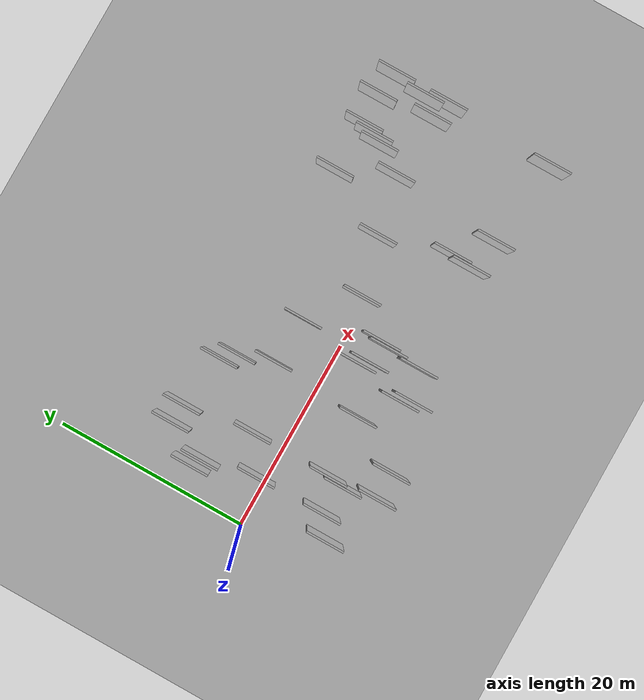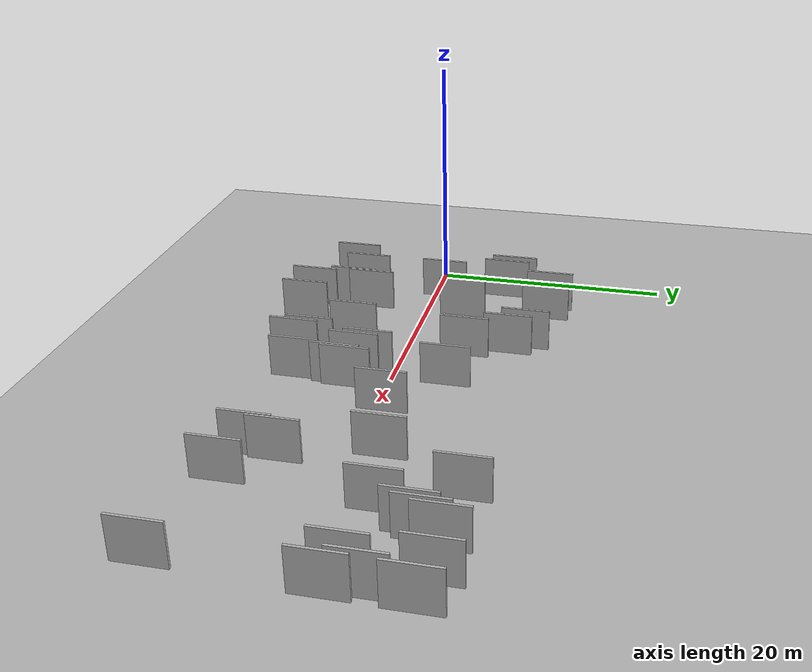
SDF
<?xml version="1.0" encoding="utf-8"?>

<sdf version="1.6">

   <world name="default">

      <gui fullscreen="0">

         <camera name="user_camera">

            <pose>-15 0 4.57585 0 0 0</pose>

            <view_controller>orbit</view_controller>

         </camera>

      </gui>

      <scene>

         <sky>

           <clouds>

             <speed>12</speed>

           </clouds>

         </sky>

         <ambient>0.4 0.4 0.4 1</ambient>

         <background>0.7 0.7 0.7 1</background>

         <shadows>1</shadows>

      </scene>

      <gravity>0 0 -9.8066</gravity>

      <magnetic_field>6e-06 2.3e-05 -4.2e-05</magnetic_field>

      <physics default="0" name="default_physics" type="ode">

         <ode>

            <solver>

               <type>quick</type>

               <iters>10</iters>

               <sor>1.0</sor>

               <use_dynamic_moi_rescaling>0</use_dynamic_moi_rescaling>

            </solver>

            <constraints>

               <cfm>0</cfm>

               <erp>0.2</erp>

               <contact_max_correcting_vel>100</contact_max_correcting_vel>

               <contact_surface_layer>0.001</contact_surface_layer>

            </constraints>

         </ode>

         <max_step_size>0.004</max_step_size>

         <real_time_factor>1</real_time_factor>

         <real_time_update_rate>250</real_time_update_rate>

      </physics>

      <light name="sun" type="directional">

         <cast_shadows>1</cast_shadows>

         <pose>0 0 10 0 0 0</pose>

         <diffuse>0.8 0.8 0.8 1</diffuse>

         <specular>0.2 0.2 0.2 1</specular>

         <attenuation>

            <range>1000</range>

            <constant>0.9</constant>

            <linear>0.01</linear>

            <quadratic>0.001</quadratic>

         </attenuation>

         <direction>-0.5 0.1 -0.9</direction>

      </light>

      <include>

         <name>ground_plane_1</name>

         <uri>model://HANNAS_ground_plane</uri>

         <pose>0 0 0  0 0 0</pose>

      </include>

      <include>

         <name>ground_plane_2</name>

         <uri>model://HANNAS_ground_plane</uri>

         <pose>100 0 0  0 0 0</pose>

      </include>

      <model name="HANNAS_wall_1">

         <static>1</static>

         <pose frame="">45.4894 8.3542 0.0 0.000000 0.000000 1.570796</pose>

         <link name="link">

            <pose frame="">0 0 2.00 0 0 0</pose>

            <collision name="collision">

               <geometry>

                  <box>

                     <size>4.00 0.2 4.00</size>

                  </box>

               </geometry>

               <max_contacts>10</max_contacts>

               <surface>

                  <contact>

                     <ode/>

                  </contact>

                  <bounce/>

                  <friction>

                     <torsional>

                        <ode/>

                     </torsional>

                     <ode/>

                  </friction>

               </surface>

            </collision>

            <visual name="visual">

               <cast_shadows>0</cast_shadows>

               <geometry>

                  <box>

                     <size>4.00 0.2 4.00</size>

                  </box>

               </geometry>

               <material>

                  <script>

                     <uri>model://HANNAS_wall/materials/scripts</uri>

                     <uri>model://HANNAS_wall/materials/textures</uri>

                     <name>vrc/HANNAS_wall</name>

                  </script>

               </material>

            </visual>

            <self_collide>0</self_collide>

            <enable_wind>0</enable_wind>

            <kinematic>0</kinematic>

         </link>

      </model>

      <model name="HANNAS_wall_2">

         <static>1</static>

         <pose frame="">42.9070 8.9392 0.0 0.000000 0.000000 1.570796</pose>

         <link name="link">

            <pose frame="">0 0 2.00 0 0 0</pose>

            <collision name="collision">

               <geometry>

                  <box>

                     <size>4.00 0.2 4.00</size>

                  </box>

               </geometry>

               <max_contacts>10</max_contacts>

               <surface>

                  <contact>

                     <ode/>

                  </contact>

                  <bounce/>

                  <friction>

                     <torsional>

                        <ode/>

                     </torsional>

                     <ode/>

                  </friction>

               </surface>

            </collision>

            <visual name="visual">

               <cast_shadows>0</cast_shadows>

               <geometry>

                  <box>

                     <size>4.00 0.2 4.00</size>

                  </box>

               </geometry>

               <material>

                  <script>

                     <uri>model://HANNAS_wall/materials/scripts</uri>

                     <uri>model://HANNAS_wall/materials/textures</uri>

                     <name>vrc/HANNAS_wall</name>

                  </script>

               </material>

            </visual>

            <self_collide>0</self_collide>

            <enable_wind>0</enable_wind>

            <kinematic>0</kinematic>

         </link>

      </model>

      <model name="HANNAS_wall_3">

         <static>1</static>

         <pose frame="">19.9680 -2.9516 0.0 0.000000 0.000000 1.570796</pose>

         <link name="link">

            <pose frame="">0 0 2.00 0 0 0</pose>

            <collision name="collision">

               <geometry>

                  <box>

                     <size>4.00 0.2 4.00</size>

                  </box>

               </geometry>

               <max_contacts>10</max_contacts>

               <surface>

                  <contact>

                     <ode/>

                  </contact>

                  <bounce/>

                  <friction>

                     <torsional>

                        <ode/>

                     </torsional>

                     <ode/>

                  </friction>

               </surface>

            </collision>

            <visual name="visual">

               <cast_shadows>0</cast_shadows>

               <geometry>

                  <box>

                     <size>4.00 0.2 4.00</size>

                  </box>

               </geometry>

               <material>

                  <script>

                     <uri>model://HANNAS_wall/materials/scripts</uri>

                     <uri>model://HANNAS_wall/materials/textures</uri>

                     <name>vrc/HANNAS_wall</name>

                  </script>

               </material>

            </visual>

            <self_collide>0</self_collide>

            <enable_wind>0</enable_wind>

            <kinematic>0</kinematic>

         </link>

      </model>

      <model name="HANNAS_wall_4">

         <static>1</static>

         <pose frame="">4.1068 6.5939 0.0 0.000000 0.000000 1.570796</pose>

         <link name="link">

            <pose frame="">0 0 2.00 0 0 0</pose>

            <collision name="collision">

               <geometry>

                  <box>

                     <size>4.00 0.2 4.00</size>

                  </box>

               </geometry>

               <max_contacts>10</max_contacts>

               <surface>

                  <contact>

                     <ode/>

                  </contact>

                  <bounce/>

                  <friction>

                     <torsional>

                        <ode/>

                     </torsional>

                     <ode/>

                  </friction>

               </surface>

            </collision>

            <visual name="visual">

               <cast_shadows>0</cast_shadows>

               <geometry>

                  <box>

                     <size>4.00 0.2 4.00</size>

                  </box>

               </geometry>

               <material>

                  <script>

                     <uri>model://HANNAS_wall/materials/scripts</uri>

                     <uri>model://HANNAS_wall/materials/textures</uri>

                     <name>vrc/HANNAS_wall</name>

                  </script>

               </material>

            </visual>

            <self_collide>0</self_collide>

            <enable_wind>0</enable_wind>

            <kinematic>0</kinematic>

         </link>

      </model>

      <model name="HANNAS_wall_5">

         <static>1</static>

         <pose frame="">18.1444 -7.2465 0.0 0.000000 0.000000 1.570796</pose>

         <link name="link">

            <pose frame="">0 0 2.00 0 0 0</pose>

            <collision name="collision">

               <geometry>

                  <box>

                     <size>4.00 0.2 4.00</size>

                  </box>

               </geometry>

               <max_contacts>10</max_contacts>

               <surface>

                  <contact>

                     <ode/>

                  </contact>

                  <bounce/>

                  <friction>

                     <torsional>

                        <ode/>

                     </torsional>

                     <ode/>

                  </friction>

               </surface>

            </collision>

            <visual name="visual">

               <cast_shadows>0</cast_shadows>

               <geometry>

                  <box>

                     <size>4.00 0.2 4.00</size>

                  </box>

               </geometry>

               <material>

                  <script>

                     <uri>model://HANNAS_wall/materials/scripts</uri>

                     <uri>model://HANNAS_wall/materials/textures</uri>

                     <name>vrc/HANNAS_wall</name>

                  </script>

               </material>

            </visual>

            <self_collide>0</self_collide>

            <enable_wind>0</enable_wind>

            <kinematic>0</kinematic>

         </link>

      </model>

      <model name="HANNAS_wall_6">

         <static>1</static>

         <pose frame="">32.6432 -6.9110 0.0 0.000000 0.000000 1.570796</pose>

         <link name="link">

            <pose frame="">0 0 2.00 0 0 0</pose>

            <collision name="collision">

               <geometry>

                  <box>

                     <size>4.00 0.2 4.00</size>

                  </box>

               </geometry>

               <max_contacts>10</max_contacts>

               <surface>

                  <contact>

                     <ode/>

                  </contact>

                  <bounce/>

                  <friction>

                     <torsional>

                        <ode/>

                     </torsional>

                     <ode/>

                  </friction>

               </surface>

            </collision>

            <visual name="visual">

               <cast_shadows>0</cast_shadows>

               <geometry>

                  <box>

                     <size>4.00 0.2 4.00</size>

                  </box>

               </geometry>

               <material>

                  <script>

                     <uri>model://HANNAS_wall/materials/scripts</uri>

                     <uri>model://HANNAS_wall/materials/textures</uri>

                     <name>vrc/HANNAS_wall</name>

                  </script>

               </material>

            </visual>

            <self_collide>0</self_collide>

            <enable_wind>0</enable_wind>

            <kinematic>0</kinematic>

         </link>

      </model>

      <model name="HANNAS_wall_7">

         <static>1</static>

         <pose frame="">7.7941 10.6193 0.0 0.000000 0.000000 1.570796</pose>

         <link name="link">

            <pose frame="">0 0 2.00 0 0 0</pose>

            <collision name="collision">

               <geometry>

                  <box>

                     <size>4.00 0.2 4.00</size>

                  </box>

               </geometry>

               <max_contacts>10</max_contacts>

               <surface>

                  <contact>

                     <ode/>

                  </contact>

                  <bounce/>

                  <friction>

                     <torsional>

                        <ode/>

                     </torsional>

                     <ode/>

                  </friction>

               </surface>

            </collision>

            <visual name="visual">

               <cast_shadows>0</cast_shadows>

               <geometry>

                  <box>

                     <size>4.00 0.2 4.00</size>

                  </box>

               </geometry>

               <material>

                  <script>

                     <uri>model://HANNAS_wall/materials/scripts</uri>

                     <uri>model://HANNAS_wall/materials/textures</uri>

                     <name>vrc/HANNAS_wall</name>

                  </script>

               </material>

            </visual>

            <self_collide>0</self_collide>

            <enable_wind>0</enable_wind>

            <kinematic>0</kinematic>

         </link>

      </model>

      <model name="HANNAS_wall_8">

         <static>1</static>

         <pose frame="">39.7721 8.7067 0.0 0.000000 0.000000 1.570796</pose>

         <link name="link">

            <pose frame="">0 0 2.00 0 0 0</pose>

            <collision name="collision">

               <geometry>

                  <box>

                     <size>4.00 0.2 4.00</size>

                  </box>

               </geometry>

               <max_contacts>10</max_contacts>

               <surface>

                  <contact>

                     <ode/>

                  </contact>

                  <bounce/>

                  <friction>

                     <torsional>

                        <ode/>

                     </torsional>

                     <ode/>

                  </friction>

               </surface>

            </collision>

            <visual name="visual">

               <cast_shadows>0</cast_shadows>

               <geometry>

                  <box>

                     <size>4.00 0.2 4.00</size>

                  </box>

               </geometry>

               <material>

                  <script>

                     <uri>model://HANNAS_wall/materials/scripts</uri>

                     <uri>model://HANNAS_wall/materials/textures</uri>

                     <name>vrc/HANNAS_wall</name>

                  </script>

               </material>

            </visual>

            <self_collide>0</self_collide>

            <enable_wind>0</enable_wind>

            <kinematic>0</kinematic>

         </link>

      </model>

      <model name="HANNAS_wall_9">

         <static>1</static>

         <pose frame="">8.4126 -6.4922 0.0 0.000000 0.000000 1.570796</pose>

         <link name="link">

            <pose frame="">0 0 2.00 0 0 0</pose>

            <collision name="collision">

               <geometry>

                  <box>

                     <size>4.00 0.2 4.00</size>

                  </box>

               </geometry>

               <max_contacts>10</max_contacts>

               <surface>

                  <contact>

                     <ode/>

                  </contact>

                  <bounce/>

                  <friction>

                     <torsional>

                        <ode/>

                     </torsional>

                     <ode/>

                  </friction>

               </surface>

            </collision>

            <visual name="visual">

               <cast_shadows>0</cast_shadows>

               <geometry>

                  <box>

                     <size>4.00 0.2 4.00</size>

                  </box>

               </geometry>

               <material>

                  <script>

                     <uri>model://HANNAS_wall/materials/scripts</uri>

                     <uri>model://HANNAS_wall/materials/textures</uri>

                     <name>vrc/HANNAS_wall</name>

                  </script>

               </material>

            </visual>

            <self_collide>0</self_collide>

            <enable_wind>0</enable_wind>

            <kinematic>0</kinematic>

         </link>

      </model>

      <model name="HANNAS_wall_10">

         <static>1</static>

         <pose frame="">39.3088 7.3638 0.0 0.000000 0.000000 1.570796</pose>

         <link name="link">

            <pose frame="">0 0 2.00 0 0 0</pose>

            <collision name="collision">

               <geometry>

                  <box>

                     <size>4.00 0.2 4.00</size>

                  </box>

               </geometry>

               <max_contacts>10</max_contacts>

               <surface>

                  <contact>

                     <ode/>

                  </contact>

                  <bounce/>

                  <friction>

                     <torsional>

                        <ode/>

                     </torsional>

                     <ode/>

                  </friction>

               </surface>

            </collision>

            <visual name="visual">

               <cast_shadows>0</cast_shadows>

               <geometry>

                  <box>

                     <size>4.00 0.2 4.00</size>

                  </box>

               </geometry>

               <material>

                  <script>

                     <uri>model://HANNAS_wall/materials/scripts</uri>

                     <uri>model://HANNAS_wall/materials/textures</uri>

                     <name>vrc/HANNAS_wall</name>

                  </script>

               </material>

            </visual>

            <self_collide>0</self_collide>

            <enable_wind>0</enable_wind>

            <kinematic>0</kinematic>

         </link>

      </model>

      <model name="HANNAS_wall_11">

         <static>1</static>

         <pose frame="">14.8884 -4.5303 0.0 0.000000 0.000000 1.570796</pose>

         <link name="link">

            <pose frame="">0 0 2.00 0 0 0</pose>

            <collision name="collision">

               <geometry>

                  <box>

                     <size>4.00 0.2 4.00</size>

                  </box>

               </geometry>

               <max_contacts>10</max_contacts>

               <surface>

                  <contact>

                     <ode/>

                  </contact>

                  <bounce/>

                  <friction>

                     <torsional>

                        <ode/>

                     </torsional>

                     <ode/>

                  </friction>

               </surface>

            </collision>

            <visual name="visual">

               <cast_shadows>0</cast_shadows>

               <geometry>

                  <box>

                     <size>4.00 0.2 4.00</size>

                  </box>

               </geometry>

               <material>

                  <script>

                     <uri>model://HANNAS_wall/materials/scripts</uri>

                     <uri>model://HANNAS_wall/materials/textures</uri>

                     <name>vrc/HANNAS_wall</name>

                  </script>

               </material>

            </visual>

            <self_collide>0</self_collide>

            <enable_wind>0</enable_wind>

            <kinematic>0</kinematic>

         </link>

      </model>

      <model name="HANNAS_wall_12">

         <static>1</static>

         <pose frame="">19.3660 -1.9566 0.0 0.000000 0.000000 1.570796</pose>

         <link name="link">

            <pose frame="">0 0 2.00 0 0 0</pose>

            <collision name="collision">

               <geometry>

                  <box>

                     <size>4.00 0.2 4.00</size>

                  </box>

               </geometry>

               <max_contacts>10</max_contacts>

               <surface>

                  <contact>

                     <ode/>

                  </contact>

                  <bounce/>

                  <friction>

                     <torsional>

                        <ode/>

                     </torsional>

                     <ode/>

                  </friction>

               </surface>

            </collision>

            <visual name="visual">

               <cast_shadows>0</cast_shadows>

               <geometry>

                  <box>

                     <size>4.00 0.2 4.00</size>

                  </box>

               </geometry>

               <material>

                  <script>

                     <uri>model://HANNAS_wall/materials/scripts</uri>

                     <uri>model://HANNAS_wall/materials/textures</uri>

                     <name>vrc/HANNAS_wall</name>

                  </script>

               </material>

            </visual>

            <self_collide>0</self_collide>

            <enable_wind>0</enable_wind>

            <kinematic>0</kinematic>

         </link>

      </model>

      <model name="HANNAS_wall_13">

         <static>1</static>

         <pose frame="">5.8351 10.7316 0.0 0.000000 0.000000 1.570796</pose>

         <link name="link">

            <pose frame="">0 0 2.00 0 0 0</pose>

            <collision name="collision">

               <geometry>

                  <box>

                     <size>4.00 0.2 4.00</size>

                  </box>

               </geometry>

               <max_contacts>10</max_contacts>

               <surface>

                  <contact>

                     <ode/>

                  </contact>

                  <bounce/>

                  <friction>

                     <torsional>

                        <ode/>

                     </torsional>

                     <ode/>

                  </friction>

               </surface>

            </collision>

            <visual name="visual">

               <cast_shadows>0</cast_shadows>

               <geometry>

                  <box>

                     <size>4.00 0.2 4.00</size>

                  </box>

               </geometry>

               <material>

                  <script>

                     <uri>model://HANNAS_wall/materials/scripts</uri>

                     <uri>model://HANNAS_wall/materials/textures</uri>

                     <name>vrc/HANNAS_wall</name>

                  </script>

               </material>

            </visual>

            <self_collide>0</self_collide>

            <enable_wind>0</enable_wind>

            <kinematic>0</kinematic>

         </link>

      </model>

      <model name="HANNAS_wall_14">

         <static>1</static>

         <pose frame="">36.9810 3.6514 0.0 0.000000 0.000000 1.570796</pose>

         <link name="link">

            <pose frame="">0 0 2.00 0 0 0</pose>

            <collision name="collision">

               <geometry>

                  <box>

                     <size>4.00 0.2 4.00</size>

                  </box>

               </geometry>

               <max_contacts>10</max_contacts>

               <surface>

                  <contact>

                     <ode/>

                  </contact>

                  <bounce/>

                  <friction>

                     <torsional>

                        <ode/>

                     </torsional>

                     <ode/>

                  </friction>

               </surface>

            </collision>

            <visual name="visual">

               <cast_shadows>0</cast_shadows>

               <geometry>

                  <box>

                     <size>4.00 0.2 4.00</size>

                  </box>

               </geometry>

               <material>

                  <script>

                     <uri>model://HANNAS_wall/materials/scripts</uri>

                     <uri>model://HANNAS_wall/materials/textures</uri>

                     <name>vrc/HANNAS_wall</name>

                  </script>

               </material>

            </visual>

            <self_collide>0</self_collide>

            <enable_wind>0</enable_wind>

            <kinematic>0</kinematic>

         </link>

      </model>

      <model name="HANNAS_wall_15">

         <static>1</static>

         <pose frame="">44.9371 -8.8621 0.0 0.000000 0.000000 1.570796</pose>

         <link name="link">

            <pose frame="">0 0 2.00 0 0 0</pose>

            <collision name="collision">

               <geometry>

                  <box>

                     <size>4.00 0.2 4.00</size>

                  </box>

               </geometry>

               <max_contacts>10</max_contacts>

               <surface>

                  <contact>

                     <ode/>

                  </contact>

                  <bounce/>

                  <friction>

                     <torsional>

                        <ode/>

                     </torsional>

                     <ode/>

                  </friction>

               </surface>

            </collision>

            <visual name="visual">

               <cast_shadows>0</cast_shadows>

               <geometry>

                  <box>

                     <size>4.00 0.2 4.00</size>

                  </box>

               </geometry>

               <material>

                  <script>

                     <uri>model://HANNAS_wall/materials/scripts</uri>

                     <uri>model://HANNAS_wall/materials/textures</uri>

                     <name>vrc/HANNAS_wall</name>

                  </script>

               </material>

            </visual>

            <self_collide>0</self_collide>

            <enable_wind>0</enable_wind>

            <kinematic>0</kinematic>

         </link>

      </model>

      <model name="HANNAS_wall_16">

         <static>1</static>

         <pose frame="">25.1809 0.7637 0.0 0.000000 0.000000 1.570796</pose>

         <link name="link">

            <pose frame="">0 0 2.00 0 0 0</pose>

            <collision name="collision">

               <geometry>

                  <box>

                     <size>4.00 0.2 4.00</size>

                  </box>

               </geometry>

               <max_contacts>10</max_contacts>

               <surface>

                  <contact>

                     <ode/>

                  </contact>

                  <bounce/>

                  <friction>

                     <torsional>

                        <ode/>

                     </torsional>

                     <ode/>

                  </friction>

               </surface>

            </collision>

            <visual name="visual">

               <cast_shadows>0</cast_shadows>

               <geometry>

                  <box>

                     <size>4.00 0.2 4.00</size>

                  </box>

               </geometry>

               <material>

                  <script>

                     <uri>model://HANNAS_wall/materials/scripts</uri>

                     <uri>model://HANNAS_wall/materials/textures</uri>

                     <name>vrc/HANNAS_wall</name>

                  </script>

               </material>

            </visual>

            <self_collide>0</self_collide>

            <enable_wind>0</enable_wind>

            <kinematic>0</kinematic>

         </link>

      </model>

      <model name="HANNAS_wall_17">

         <static>1</static>

         <pose frame="">8.6704 3.4592 0.0 0.000000 0.000000 1.570796</pose>

         <link name="link">

            <pose frame="">0 0 2.00 0 0 0</pose>

            <collision name="collision">

               <geometry>

                  <box>

                     <size>4.00 0.2 4.00</size>

                  </box>

               </geometry>

               <max_contacts>10</max_contacts>

               <surface>

                  <contact>

                     <ode/>

                  </contact>

                  <bounce/>

                  <friction>

                     <torsional>

                        <ode/>

                     </torsional>

                     <ode/>

                  </friction>

               </surface>

            </collision>

            <visual name="visual">

               <cast_shadows>0</cast_shadows>

               <geometry>

                  <box>

                     <size>4.00 0.2 4.00</size>

                  </box>

               </geometry>

               <material>

                  <script>

                     <uri>model://HANNAS_wall/materials/scripts</uri>

                     <uri>model://HANNAS_wall/materials/textures</uri>

                     <name>vrc/HANNAS_wall</name>

                  </script>

               </material>

            </visual>

            <self_collide>0</self_collide>

            <enable_wind>0</enable_wind>

            <kinematic>0</kinematic>

         </link>

      </model>

      <model name="HANNAS_wall_18">

         <static>1</static>

         <pose frame="">20.5142 4.6013 0.0 0.000000 0.000000 1.570796</pose>

         <link name="link">

            <pose frame="">0 0 2.00 0 0 0</pose>

            <collision name="collision">

               <geometry>

                  <box>

                     <size>4.00 0.2 4.00</size>

                  </box>

               </geometry>

               <max_contacts>10</max_contacts>

               <surface>

                  <contact>

                     <ode/>

                  </contact>

                  <bounce/>

                  <friction>

                     <torsional>

                        <ode/>

                     </torsional>

                     <ode/>

                  </friction>

               </surface>

            </collision>

            <visual name="visual">

               <cast_shadows>0</cast_shadows>

               <geometry>

                  <box>

                     <size>4.00 0.2 4.00</size>

                  </box>

               </geometry>

               <material>

                  <script>

                     <uri>model://HANNAS_wall/materials/scripts</uri>

                     <uri>model://HANNAS_wall/materials/textures</uri>

                     <name>vrc/HANNAS_wall</name>

                  </script>

               </material>

            </visual>

            <self_collide>0</self_collide>

            <enable_wind>0</enable_wind>

            <kinematic>0</kinematic>

         </link>

      </model>

      <model name="HANNAS_wall_19">

         <static>1</static>

         <pose frame="">32.8965 -4.7578 0.0 0.000000 0.000000 1.570796</pose>

         <link name="link">

            <pose frame="">0 0 2.00 0 0 0</pose>

            <collision name="collision">

               <geometry>

                  <box>

                     <size>4.00 0.2 4.00</size>

                  </box>

               </geometry>

               <max_contacts>10</max_contacts>

               <surface>

                  <contact>

                     <ode/>

                  </contact>

                  <bounce/>

                  <friction>

                     <torsional>

                        <ode/>

                     </torsional>

                     <ode/>

                  </friction>

               </surface>

            </collision>

            <visual name="visual">

               <cast_shadows>0</cast_shadows>

               <geometry>

                  <box>

                     <size>4.00 0.2 4.00</size>

                  </box>

               </geometry>

               <material>

                  <script>

                     <uri>model://HANNAS_wall/materials/scripts</uri>

                     <uri>model://HANNAS_wall/materials/textures</uri>

                     <name>vrc/HANNAS_wall</name>

                  </script>

               </material>

            </visual>

            <self_collide>0</self_collide>

            <enable_wind>0</enable_wind>

            <kinematic>0</kinematic>

         </link>

      </model>

      <model name="HANNAS_wall_20">

         <static>1</static>

         <pose frame="">38.7794 6.4910 0.0 0.000000 0.000000 1.570796</pose>

         <link name="link">

            <pose frame="">0 0 2.00 0 0 0</pose>

            <collision name="collision">

               <geometry>

                  <box>

                     <size>4.00 0.2 4.00</size>

                  </box>

               </geometry>

               <max_contacts>10</max_contacts>

               <surface>

                  <contact>

                     <ode/>

                  </contact>

                  <bounce/>

                  <friction>

                     <torsional>

                        <ode/>

                     </torsional>

                     <ode/>

                  </friction>

               </surface>

            </collision>

            <visual name="visual">

               <cast_shadows>0</cast_shadows>

               <geometry>

                  <box>

                     <size>4.00 0.2 4.00</size>

                  </box>

               </geometry>

               <material>

                  <script>

                     <uri>model://HANNAS_wall/materials/scripts</uri>

                     <uri>model://HANNAS_wall/materials/textures</uri>

                     <name>vrc/HANNAS_wall</name>

                  </script>

               </material>

            </visual>

            <self_collide>0</self_collide>

            <enable_wind>0</enable_wind>

            <kinematic>0</kinematic>

         </link>

      </model>

      <model name="HANNAS_wall_21">

         <static>1</static>

         <pose frame="">45.4353 2.6922 0.0 0.000000 0.000000 1.570796</pose>

         <link name="link">

            <pose frame="">0 0 2.00 0 0 0</pose>

            <collision name="collision">

               <geometry>

                  <box>

                     <size>4.00 0.2 4.00</size>

                  </box>

               </geometry>

               <max_contacts>10</max_contacts>

               <surface>

                  <contact>

                     <ode/>

                  </contact>

                  <bounce/>

                  <friction>

                     <torsional>

                        <ode/>

                     </torsional>

                     <ode/>

                  </friction>

               </surface>

            </collision>

            <visual name="visual">

               <cast_shadows>0</cast_shadows>

               <geometry>

                  <box>

                     <size>4.00 0.2 4.00</size>

                  </box>

               </geometry>

               <material>

                  <script>

                     <uri>model://HANNAS_wall/materials/scripts</uri>

                     <uri>model://HANNAS_wall/materials/textures</uri>

                     <name>vrc/HANNAS_wall</name>

                  </script>

               </material>

            </visual>

            <self_collide>0</self_collide>

            <enable_wind>0</enable_wind>

            <kinematic>0</kinematic>

         </link>

      </model>

      <model name="HANNAS_wall_22">

         <static>1</static>

         <pose frame="">18.7224 -8.3823 0.0 0.000000 0.000000 1.570796</pose>

         <link name="link">

            <pose frame="">0 0 2.00 0 0 0</pose>

            <collision name="collision">

               <geometry>

                  <box>

                     <size>4.00 0.2 4.00</size>

                  </box>

               </geometry>

               <max_contacts>10</max_contacts>

               <surface>

                  <contact>

                     <ode/>

                  </contact>

                  <bounce/>

                  <friction>

                     <torsional>

                        <ode/>

                     </torsional>

                     <ode/>

                  </friction>

               </surface>

            </collision>

            <visual name="visual">

               <cast_shadows>0</cast_shadows>

               <geometry>

                  <box>

                     <size>4.00 0.2 4.00</size>

                  </box>

               </geometry>

               <material>

                  <script>

                     <uri>model://HANNAS_wall/materials/scripts</uri>

                     <uri>model://HANNAS_wall/materials/textures</uri>

                     <name>vrc/HANNAS_wall</name>

                  </script>

               </material>

            </visual>

            <self_collide>0</self_collide>

            <enable_wind>0</enable_wind>

            <kinematic>0</kinematic>

         </link>

      </model>

      <model name="HANNAS_wall_23">

         <static>1</static>

         <pose frame="">44.9551 4.9503 0.0 0.000000 0.000000 1.570796</pose>

         <link name="link">

            <pose frame="">0 0 2.00 0 0 0</pose>

            <collision name="collision">

               <geometry>

                  <box>

                     <size>4.00 0.2 4.00</size>

                  </box>

               </geometry>

               <max_contacts>10</max_contacts>

               <surface>

                  <contact>

                     <ode/>

                  </contact>

                  <bounce/>

                  <friction>

                     <torsional>

                        <ode/>

                     </torsional>

                     <ode/>

                  </friction>

               </surface>

            </collision>

            <visual name="visual">

               <cast_shadows>0</cast_shadows>

               <geometry>

                  <box>

                     <size>4.00 0.2 4.00</size>

                  </box>

               </geometry>

               <material>

                  <script>

                     <uri>model://HANNAS_wall/materials/scripts</uri>

                     <uri>model://HANNAS_wall/materials/textures</uri>

                     <name>vrc/HANNAS_wall</name>

                  </script>

               </material>

            </visual>

            <self_collide>0</self_collide>

            <enable_wind>0</enable_wind>

            <kinematic>0</kinematic>

         </link>

      </model>

      <model name="HANNAS_wall_24">

         <static>1</static>

         <pose frame="">35.9632 -7.7433 0.0 0.000000 0.000000 1.570796</pose>

         <link name="link">

            <pose frame="">0 0 2.00 0 0 0</pose>

            <collision name="collision">

               <geometry>

                  <box>

                     <size>4.00 0.2 4.00</size>

                  </box>

               </geometry>

               <max_contacts>10</max_contacts>

               <surface>

                  <contact>

                     <ode/>

                  </contact>

                  <bounce/>

                  <friction>

                     <torsional>

                        <ode/>

                     </torsional>

                     <ode/>

                  </friction>

               </surface>

            </collision>

            <visual name="visual">

               <cast_shadows>0</cast_shadows>

               <geometry>

                  <box>

                     <size>4.00 0.2 4.00</size>

                  </box>

               </geometry>

               <material>

                  <script>

                     <uri>model://HANNAS_wall/materials/scripts</uri>

                     <uri>model://HANNAS_wall/materials/textures</uri>

                     <name>vrc/HANNAS_wall</name>

                  </script>

               </material>

            </visual>

            <self_collide>0</self_collide>

            <enable_wind>0</enable_wind>

            <kinematic>0</kinematic>

         </link>

      </model>

      <model name="HANNAS_wall_25">

         <static>1</static>

         <pose frame="">13.3423 9.7077 0.0 0.000000 0.000000 1.570796</pose>

         <link name="link">

            <pose frame="">0 0 2.00 0 0 0</pose>

            <collision name="collision">

               <geometry>

                  <box>

                     <size>4.00 0.2 4.00</size>

                  </box>

               </geometry>

               <max_contacts>10</max_contacts>

               <surface>

                  <contact>

                     <ode/>

                  </contact>

                  <bounce/>

                  <friction>

                     <torsional>

                        <ode/>

                     </torsional>

                     <ode/>

                  </friction>

               </surface>

            </collision>

            <visual name="visual">

               <cast_shadows>0</cast_shadows>

               <geometry>

                  <box>

                     <size>4.00 0.2 4.00</size>

                  </box>

               </geometry>

               <material>

                  <script>

                     <uri>model://HANNAS_wall/materials/scripts</uri>

                     <uri>model://HANNAS_wall/materials/textures</uri>

                     <name>vrc/HANNAS_wall</name>

                  </script>

               </material>

            </visual>

            <self_collide>0</self_collide>

            <enable_wind>0</enable_wind>

            <kinematic>0</kinematic>

         </link>

      </model>

      <model name="HANNAS_wall_26">

         <static>1</static>

         <pose frame="">34.5533 8.9922 0.0 0.000000 0.000000 1.570796</pose>

         <link name="link">

            <pose frame="">0 0 2.00 0 0 0</pose>

            <collision name="collision">

               <geometry>

                  <box>

                     <size>4.00 0.2 4.00</size>

                  </box>

               </geometry>

               <max_contacts>10</max_contacts>

               <surface>

                  <contact>

                     <ode/>

                  </contact>

                  <bounce/>

                  <friction>

                     <torsional>

                        <ode/>

                     </torsional>

                     <ode/>

                  </friction>

               </surface>

            </collision>

            <visual name="visual">

               <cast_shadows>0</cast_shadows>

               <geometry>

                  <box>

                     <size>4.00 0.2 4.00</size>

                  </box>

               </geometry>

               <material>

                  <script>

                     <uri>model://HANNAS_wall/materials/scripts</uri>

                     <uri>model://HANNAS_wall/materials/textures</uri>

                     <name>vrc/HANNAS_wall</name>

                  </script>

               </material>

            </visual>

            <self_collide>0</self_collide>

            <enable_wind>0</enable_wind>

            <kinematic>0</kinematic>

         </link>

      </model>

      <model name="HANNAS_wall_27">

         <static>1</static>

         <pose frame="">14.5126 8.4438 0.0 0.000000 0.000000 1.570796</pose>

         <link name="link">

            <pose frame="">0 0 2.00 0 0 0</pose>

            <collision name="collision">

               <geometry>

                  <box>

                     <size>4.00 0.2 4.00</size>

                  </box>

               </geometry>

               <max_contacts>10</max_contacts>

               <surface>

                  <contact>

                     <ode/>

                  </contact>

                  <bounce/>

                  <friction>

                     <torsional>

                        <ode/>

                     </torsional>

                     <ode/>

                  </friction>

               </surface>

            </collision>

            <visual name="visual">

               <cast_shadows>0</cast_shadows>

               <geometry>

                  <box>

                     <size>4.00 0.2 4.00</size>

                  </box>

               </geometry>

               <material>

                  <script>

                     <uri>model://HANNAS_wall/materials/scripts</uri>

                     <uri>model://HANNAS_wall/materials/textures</uri>

                     <name>vrc/HANNAS_wall</name>

                  </script>

               </material>

            </visual>

            <self_collide>0</self_collide>

            <enable_wind>0</enable_wind>

            <kinematic>0</kinematic>

         </link>

      </model>

      <model name="HANNAS_wall_28">

         <static>1</static>

         <pose frame="">5.3113 -5.9753 0.0 0.000000 0.000000 1.570796</pose>

         <link name="link">

            <pose frame="">0 0 2.00 0 0 0</pose>

            <collision name="collision">

               <geometry>

                  <box>

                     <size>4.00 0.2 4.00</size>

                  </box>

               </geometry>

               <max_contacts>10</max_contacts>

               <surface>

                  <contact>

                     <ode/>

                  </contact>

                  <bounce/>

                  <friction>

                     <torsional>

                        <ode/>

                     </torsional>

                     <ode/>

                  </friction>

               </surface>

            </collision>

            <visual name="visual">

               <cast_shadows>0</cast_shadows>

               <geometry>

                  <box>

                     <size>4.00 0.2 4.00</size>

                  </box>

               </geometry>

               <material>

                  <script>

                     <uri>model://HANNAS_wall/materials/scripts</uri>

                     <uri>model://HANNAS_wall/materials/textures</uri>

                     <name>vrc/HANNAS_wall</name>

                  </script>

               </material>

            </visual>

            <self_collide>0</self_collide>

            <enable_wind>0</enable_wind>

            <kinematic>0</kinematic>

         </link>

      </model>

      <model name="HANNAS_wall_29">

         <static>1</static>

         <pose frame="">8.6583 -4.7789 0.0 0.000000 0.000000 1.570796</pose>

         <link name="link">

            <pose frame="">0 0 2.00 0 0 0</pose>

            <collision name="collision">

               <geometry>

                  <box>

                     <size>4.00 0.2 4.00</size>

                  </box>

               </geometry>

               <max_contacts>10</max_contacts>

               <surface>

                  <contact>

                     <ode/>

                  </contact>

                  <bounce/>

                  <friction>

                     <torsional>

                        <ode/>

                     </torsional>

                     <ode/>

                  </friction>

               </surface>

            </collision>

            <visual name="visual">

               <cast_shadows>0</cast_shadows>

               <geometry>

                  <box>

                     <size>4.00 0.2 4.00</size>

                  </box>

               </geometry>

               <material>

                  <script>

                     <uri>model://HANNAS_wall/materials/scripts</uri>

                     <uri>model://HANNAS_wall/materials/textures</uri>

                     <name>vrc/HANNAS_wall</name>

                  </script>

               </material>

            </visual>

            <self_collide>0</self_collide>

            <enable_wind>0</enable_wind>

            <kinematic>0</kinematic>

         </link>

      </model>

      <model name="HANNAS_wall_30">

         <static>1</static>

         <pose frame="">5.2321 1.1146 0.0 0.000000 0.000000 1.570796</pose>

         <link name="link">

            <pose frame="">0 0 2.00 0 0 0</pose>

            <collision name="collision">

               <geometry>

                  <box>

                     <size>4.00 0.2 4.00</size>

                  </box>

               </geometry>

               <max_contacts>10</max_contacts>

               <surface>

                  <contact>

                     <ode/>

                  </contact>

                  <bounce/>

                  <friction>

                     <torsional>

                        <ode/>

                     </torsional>

                     <ode/>

                  </friction>

               </surface>

            </collision>

            <visual name="visual">

               <cast_shadows>0</cast_shadows>

               <geometry>

                  <box>

                     <size>4.00 0.2 4.00</size>

                  </box>

               </geometry>

               <material>

                  <script>

                     <uri>model://HANNAS_wall/materials/scripts</uri>

                     <uri>model://HANNAS_wall/materials/textures</uri>

                     <name>vrc/HANNAS_wall</name>

                  </script>

               </material>

            </visual>

            <self_collide>0</self_collide>

            <enable_wind>0</enable_wind>

            <kinematic>0</kinematic>

         </link>

      </model>

      <model name="HANNAS_wall_31">

         <static>1</static>

         <pose frame="">21.7779 -7.2775 0.0 0.000000 0.000000 1.570796</pose>

         <link name="link">

            <pose frame="">0 0 2.00 0 0 0</pose>

            <collision name="collision">

               <geometry>

                  <box>

                     <size>4.00 0.2 4.00</size>

                  </box>

               </geometry>

               <max_contacts>10</max_contacts>

               <surface>

                  <contact>

                     <ode/>

                  </contact>

                  <bounce/>

                  <friction>

                     <torsional>

                        <ode/>

                     </torsional>

                     <ode/>

                  </friction>

               </surface>

            </collision>

            <visual name="visual">

               <cast_shadows>0</cast_shadows>

               <geometry>

                  <box>

                     <size>4.00 0.2 4.00</size>

                  </box>

               </geometry>

               <material>

                  <script>

                     <uri>model://HANNAS_wall/materials/scripts</uri>

                     <uri>model://HANNAS_wall/materials/textures</uri>

                     <name>vrc/HANNAS_wall</name>

                  </script>

               </material>

            </visual>

            <self_collide>0</self_collide>

            <enable_wind>0</enable_wind>

            <kinematic>0</kinematic>

         </link>

      </model>

      <model name="HANNAS_wall_32">

         <static>1</static>

         <pose frame="">11.7994 -9.8364 0.0 0.000000 0.000000 1.570796</pose>

         <link name="link">

            <pose frame="">0 0 2.00 0 0 0</pose>

            <collision name="collision">

               <geometry>

                  <box>

                     <size>4.00 0.2 4.00</size>

                  </box>

               </geometry>

               <max_contacts>10</max_contacts>

               <surface>

                  <contact>

                     <ode/>

                  </contact>

                  <bounce/>

                  <friction>

                     <torsional>

                        <ode/>

                     </torsional>

                     <ode/>

                  </friction>

               </surface>

            </collision>

            <visual name="visual">

               <cast_shadows>0</cast_shadows>

               <geometry>

                  <box>

                     <size>4.00 0.2 4.00</size>

                  </box>

               </geometry>

               <material>

                  <script>

                     <uri>model://HANNAS_wall/materials/scripts</uri>

                     <uri>model://HANNAS_wall/materials/textures</uri>

                     <name>vrc/HANNAS_wall</name>

                  </script>

               </material>

            </visual>

            <self_collide>0</self_collide>

            <enable_wind>0</enable_wind>

            <kinematic>0</kinematic>

         </link>

      </model>

      <model name="HANNAS_wall_33">

         <static>1</static>

         <pose frame="">3.1944 -7.5090 0.0 0.000000 0.000000 1.570796</pose>

         <link name="link">

            <pose frame="">0 0 2.00 0 0 0</pose>

            <collision name="collision">

               <geometry>

                  <box>

                     <size>4.00 0.2 4.00</size>

                  </box>

               </geometry>

               <max_contacts>10</max_contacts>

               <surface>

                  <contact>

                     <ode/>

                  </contact>

                  <bounce/>

                  <friction>

                     <torsional>

                        <ode/>

                     </torsional>

                     <ode/>

                  </friction>

               </surface>

            </collision>

            <visual name="visual">

               <cast_shadows>0</cast_shadows>

               <geometry>

                  <box>

                     <size>4.00 0.2 4.00</size>

                  </box>

               </geometry>

               <material>

                  <script>

                     <uri>model://HANNAS_wall/materials/scripts</uri>

                     <uri>model://HANNAS_wall/materials/textures</uri>

                     <name>vrc/HANNAS_wall</name>

                  </script>

               </material>

            </visual>

            <self_collide>0</self_collide>

            <enable_wind>0</enable_wind>

            <kinematic>0</kinematic>

         </link>

      </model>

      <model name="HANNAS_wall_34">

         <static>1</static>

         <pose frame="">31.0081 2.2974 0.0 0.000000 0.000000 1.570796</pose>

         <link name="link">

            <pose frame="">0 0 2.00 0 0 0</pose>

            <collision name="collision">

               <geometry>

                  <box>

                     <size>4.00 0.2 4.00</size>

                  </box>

               </geometry>

               <max_contacts>10</max_contacts>

               <surface>

                  <contact>

                     <ode/>

                  </contact>

                  <bounce/>

                  <friction>

                     <torsional>

                        <ode/>

                     </torsional>

                     <ode/>

                  </friction>

               </surface>

            </collision>

            <visual name="visual">

               <cast_shadows>0</cast_shadows>

               <geometry>

                  <box>

                     <size>4.00 0.2 4.00</size>

                  </box>

               </geometry>

               <material>

                  <script>

                     <uri>model://HANNAS_wall/materials/scripts</uri>

                     <uri>model://HANNAS_wall/materials/textures</uri>

                     <name>vrc/HANNAS_wall</name>

                  </script>

               </material>

            </visual>

            <self_collide>0</self_collide>

            <enable_wind>0</enable_wind>

            <kinematic>0</kinematic>

         </link>

      </model>

      <model name="HANNAS_wall_35">

         <static>1</static>

         <pose frame="">43.5184 3.3649 0.0 0.000000 0.000000 1.570796</pose>

         <link name="link">

            <pose frame="">0 0 2.00 0 0 0</pose>

            <collision name="collision">

               <geometry>

                  <box>

                     <size>4.00 0.2 4.00</size>

                  </box>

               </geometry>

               <max_contacts>10</max_contacts>

               <surface>

                  <contact>

                     <ode/>

                  </contact>

                  <bounce/>

                  <friction>

                     <torsional>

                        <ode/>

                     </torsional>

                     <ode/>

                  </friction>

               </surface>

            </collision>

            <visual name="visual">

               <cast_shadows>0</cast_shadows>

               <geometry>

                  <box>

                     <size>4.00 0.2 4.00</size>

                  </box>

               </geometry>

               <material>

                  <script>

                     <uri>model://HANNAS_wall/materials/scripts</uri>

                     <uri>model://HANNAS_wall/materials/textures</uri>

                     <name>vrc/HANNAS_wall</name>

                  </script>

               </material>

            </visual>

            <self_collide>0</self_collide>

            <enable_wind>0</enable_wind>

            <kinematic>0</kinematic>

         </link>

      </model>

      <model name="HANNAS_wall_36">

         <static>1</static>

         <pose frame="">22.3145 -2.9562 0.0 0.000000 0.000000 1.570796</pose>

         <link name="link">

            <pose frame="">0 0 2.00 0 0 0</pose>

            <collision name="collision">

               <geometry>

                  <box>

                     <size>4.00 0.2 4.00</size>

                  </box>

               </geometry>

               <max_contacts>10</max_contacts>

               <surface>

                  <contact>

                     <ode/>

                  </contact>

                  <bounce/>

                  <friction>

                     <torsional>

                        <ode/>

                     </torsional>

                     <ode/>

                  </friction>

               </surface>

            </collision>

            <visual name="visual">

               <cast_shadows>0</cast_shadows>

               <geometry>

                  <box>

                     <size>4.00 0.2 4.00</size>

                  </box>

               </geometry>

               <material>

                  <script>

                     <uri>model://HANNAS_wall/materials/scripts</uri>

                     <uri>model://HANNAS_wall/materials/textures</uri>

                     <name>vrc/HANNAS_wall</name>

                  </script>

               </material>

            </visual>

            <self_collide>0</self_collide>

            <enable_wind>0</enable_wind>

            <kinematic>0</kinematic>

         </link>

      </model>

      <model name="HANNAS_wall_37">

         <static>1</static>

         <pose frame="">22.0573 -3.8552 0.0 0.000000 0.000000 1.570796</pose>

         <link name="link">

            <pose frame="">0 0 2.00 0 0 0</pose>

            <collision name="collision">

               <geometry>

                  <box>

                     <size>4.00 0.2 4.00</size>

                  </box>

               </geometry>

               <max_contacts>10</max_contacts>

               <surface>

                  <contact>

                     <ode/>

                  </contact>

                  <bounce/>

                  <friction>

                     <torsional>

                        <ode/>

                     </torsional>

                     <ode/>

                  </friction>

               </surface>

            </collision>

            <visual name="visual">

               <cast_shadows>0</cast_shadows>

               <geometry>

                  <box>

                     <size>4.00 0.2 4.00</size>

                  </box>

               </geometry>

               <material>

                  <script>

                     <uri>model://HANNAS_wall/materials/scripts</uri>

                     <uri>model://HANNAS_wall/materials/textures</uri>

                     <name>vrc/HANNAS_wall</name>

                  </script>

               </material>

            </visual>

            <self_collide>0</self_collide>

            <enable_wind>0</enable_wind>

            <kinematic>0</kinematic>

         </link>

      </model>

      <model name="HANNAS_wall_38">

         <static>1</static>

         <pose frame="">9.0260 -9.8781 0.0 0.000000 0.000000 1.570796</pose>

         <link name="link">

            <pose frame="">0 0 2.00 0 0 0</pose>

            <collision name="collision">

               <geometry>

                  <box>

                     <size>4.00 0.2 4.00</size>

                  </box>

               </geometry>

               <max_contacts>10</max_contacts>

               <surface>

                  <contact>

                     <ode/>

                  </contact>

                  <bounce/>

                  <friction>

                     <torsional>

                        <ode/>

                     </torsional>

                     <ode/>

                  </friction>

               </surface>

            </collision>

            <visual name="visual">

               <cast_shadows>0</cast_shadows>

               <geometry>

                  <box>

                     <size>4.00 0.2 4.00</size>

                  </box>

               </geometry>

               <material>

                  <script>

                     <uri>model://HANNAS_wall/materials/scripts</uri>

                     <uri>model://HANNAS_wall/materials/textures</uri>

                     <name>vrc/HANNAS_wall</name>

                  </script>

               </material>

            </visual>

            <self_collide>0</self_collide>

            <enable_wind>0</enable_wind>

            <kinematic>0</kinematic>

         </link>

      </model>

      <model name="HANNAS_wall_39">

         <static>1</static>

         <pose frame="">3.1604 7.1440 0.0 0.000000 0.000000 1.570796</pose>

         <link name="link">

            <pose frame="">0 0 2.00 0 0 0</pose>

            <collision name="collision">

               <geometry>

                  <box>

                     <size>4.00 0.2 4.00</size>

                  </box>

               </geometry>

               <max_contacts>10</max_contacts>

               <surface>

                  <contact>

                     <ode/>

                  </contact>

                  <bounce/>

                  <friction>

                     <torsional>

                        <ode/>

                     </torsional>

                     <ode/>

                  </friction>

               </surface>

            </collision>

            <visual name="visual">

               <cast_shadows>0</cast_shadows>

               <geometry>

                  <box>

                     <size>4.00 0.2 4.00</size>

                  </box>

               </geometry>

               <material>

                  <script>

                     <uri>model://HANNAS_wall/materials/scripts</uri>

                     <uri>model://HANNAS_wall/materials/textures</uri>

                     <name>vrc/HANNAS_wall</name>

                  </script>

               </material>

            </visual>

            <self_collide>0</self_collide>

            <enable_wind>0</enable_wind>

            <kinematic>0</kinematic>

         </link>

      </model>

      <model name="HANNAS_wall_40">

         <static>1</static>

         <pose frame="">15.6275 5.0725 0.0 0.000000 0.000000 1.570796</pose>

         <link name="link">

            <pose frame="">0 0 2.00 0 0 0</pose>

            <collision name="collision">

               <geometry>

                  <box>

                     <size>4.00 0.2 4.00</size>

                  </box>

               </geometry>

               <max_contacts>10</max_contacts>

               <surface>

                  <contact>

                     <ode/>

                  </contact>

                  <bounce/>

                  <friction>

                     <torsional>

                        <ode/>

                     </torsional>

                     <ode/>

                  </friction>

               </surface>

            </collision>

            <visual name="visual">

               <cast_shadows>0</cast_shadows>

               <geometry>

                  <box>

                     <size>4.00 0.2 4.00</size>

                  </box>

               </geometry>

               <material>

                  <script>

                     <uri>model://HANNAS_wall/materials/scripts</uri>

                     <uri>model://HANNAS_wall/materials/textures</uri>

                     <name>vrc/HANNAS_wall</name>

                  </script>

               </material>

            </visual>

            <self_collide>0</self_collide>

            <enable_wind>0</enable_wind>

            <kinematic>0</kinematic>

         </link>

      </model>

   </world>

</sdf>
